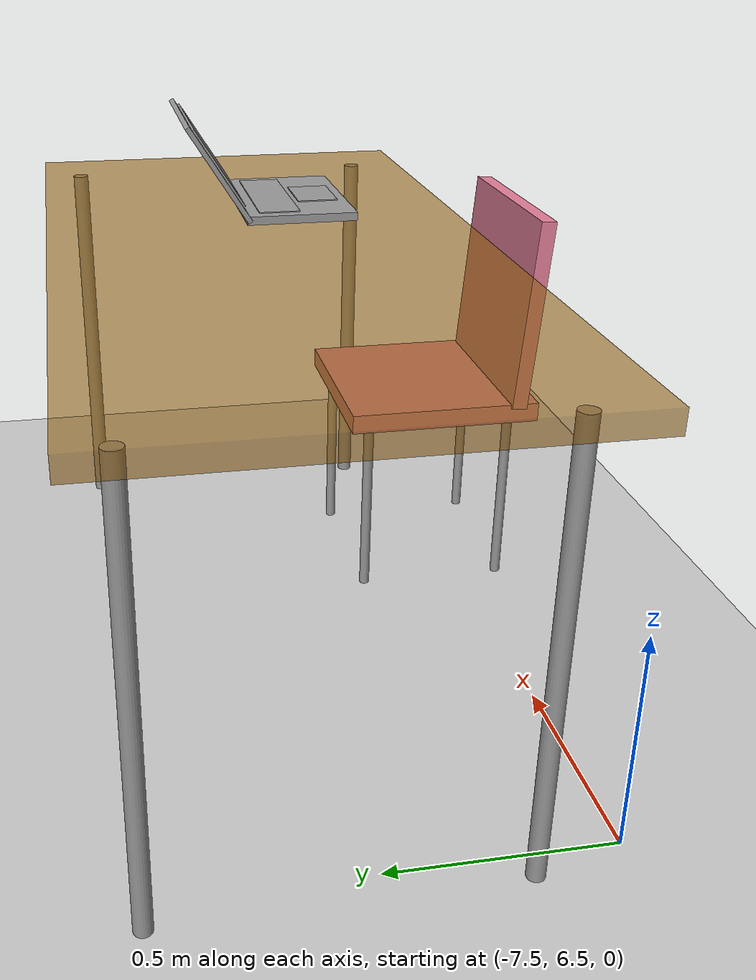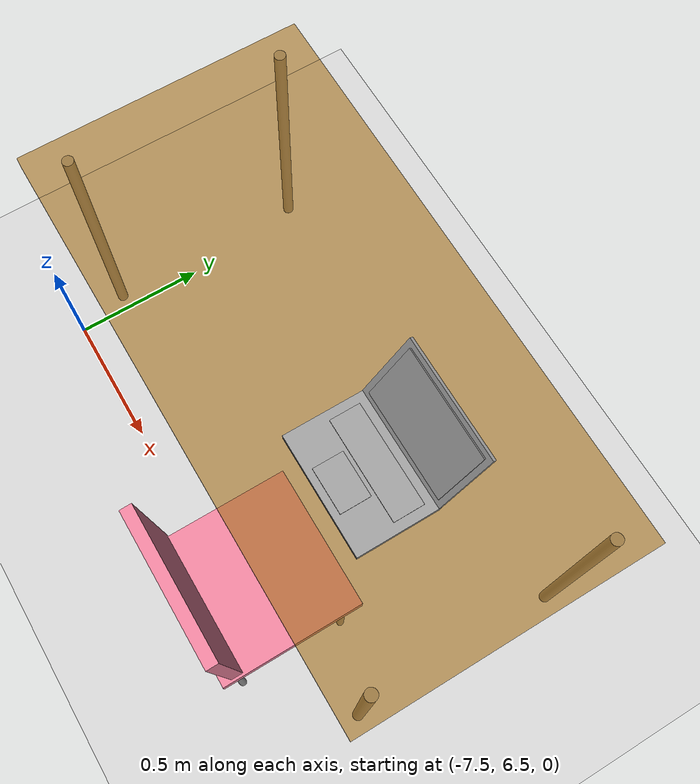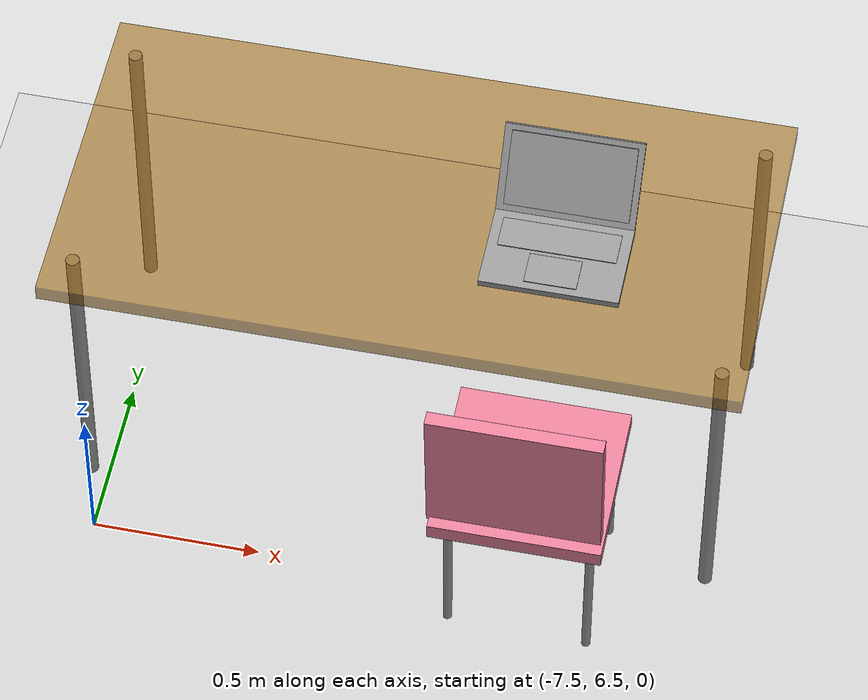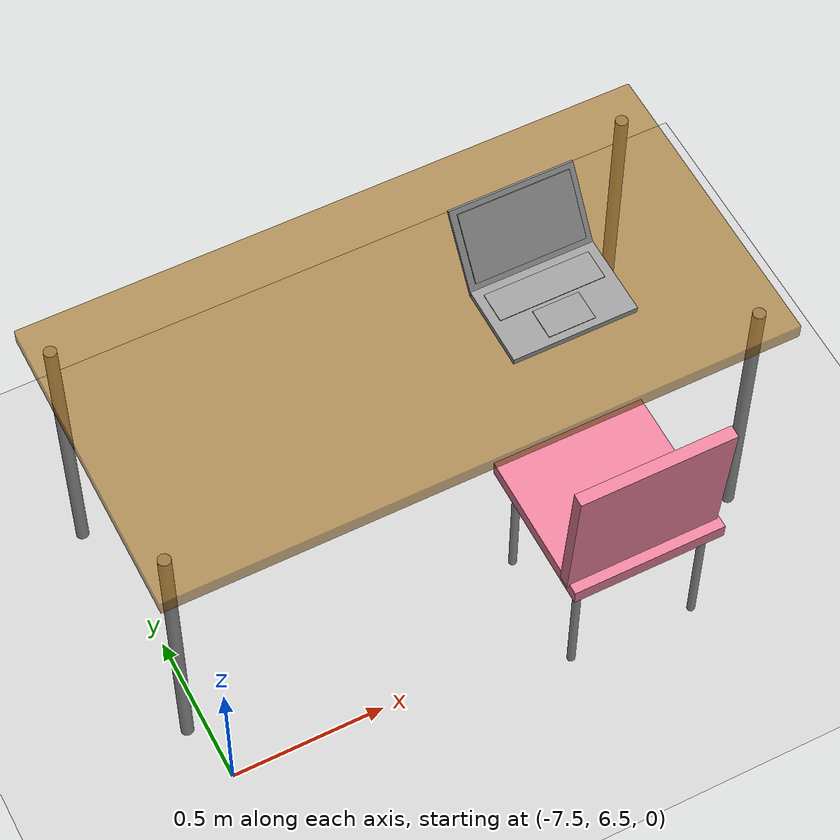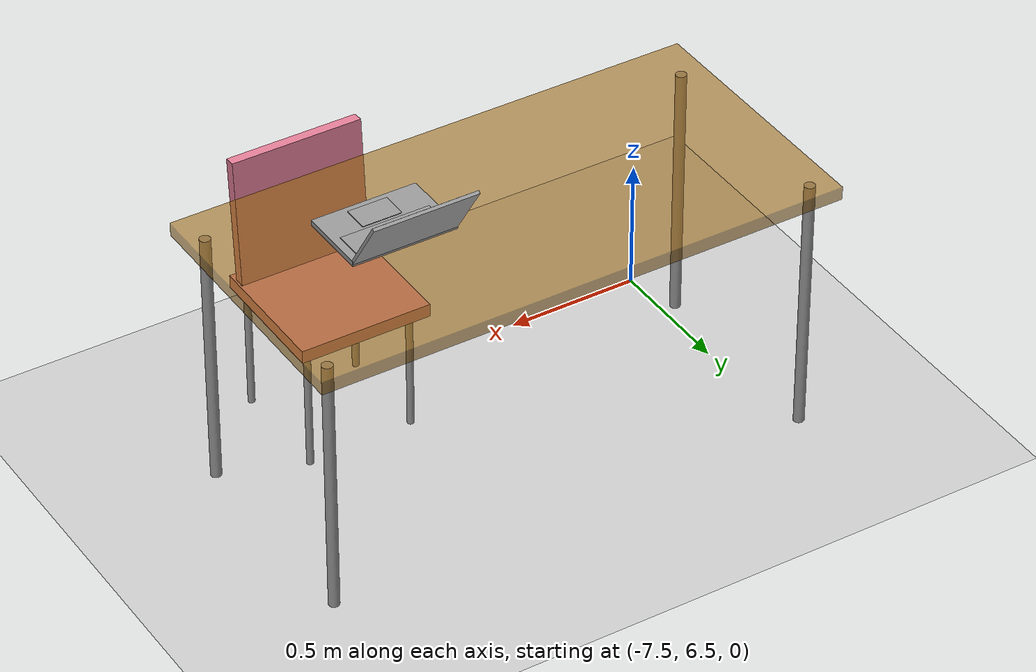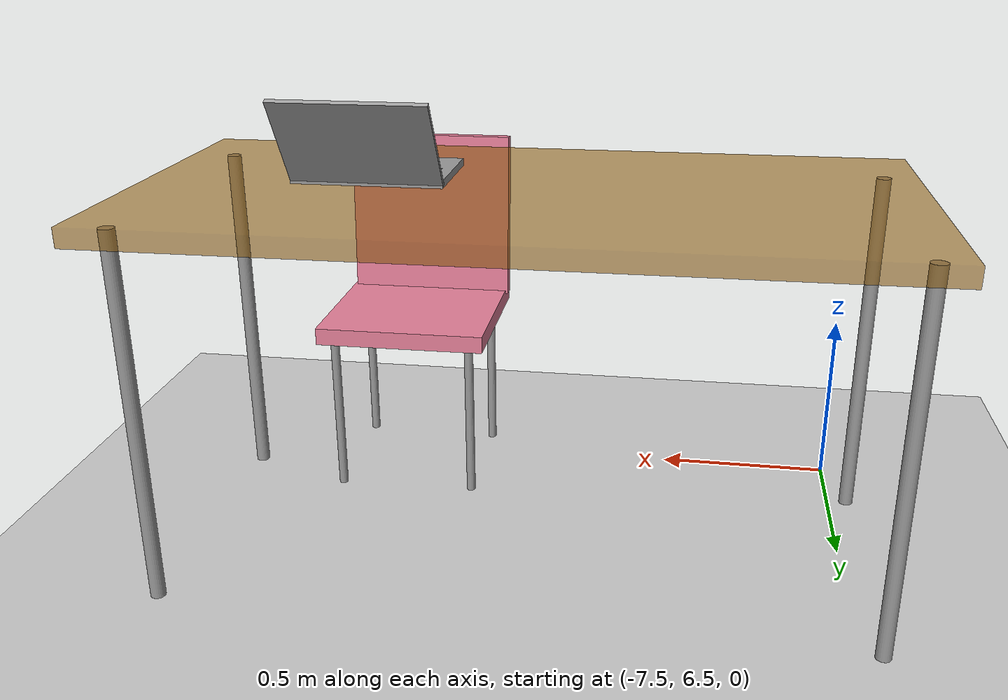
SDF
<sdf version="1.7">
 <world name="default">
  <model name="ground_plane">
   <static>1</static>
   <link name="link">
    <collision name="collision">
     <geometry><plane><normal>0 0 1</normal><size>100 100</size></plane></geometry>
     <surface>
      <contact><collide_bitmask>65535</collide_bitmask></contact>
      <friction><ode><mu>100</mu><mu2>50</mu2></ode></friction>
     </surface>
    </collision>
    <visual name="visual">
     <cast_shadows>0</cast_shadows>
     <geometry><plane><normal>0 0 1</normal><size>100 100</size></plane></geometry>
     <material>
      <script><uri>file://media/materials/scripts/gazebo.material</uri><name>Gazebo/Grey</name></script>
     </material>
    </visual>
   </link>
  </model>
  <model name="my_table_v2">
   <link name="link">
    <inertial>
     <mass>1</mass>
     <inertia>
      <ixx>0.166667</ixx>
      <ixy>0</ixy>
      <ixz>0</ixz>
      <iyy>0.166667</iyy>
      <iyz>0</iyz>
      <izz>0.166667</izz>
     </inertia>
    </inertial>
    <visual name="visual">
     <geometry><box><size>2 1 0.05</size></box></geometry>
     <material>
      <script><name>Gazebo/Grey</name><uri>file://media/materials/scripts/gazebo.material</uri></script>
      <shader type="pixel"><normal_map>__default__</normal_map></shader>
      <ambient>0.6 0.39 0.055 0.6</ambient>
      <diffuse>0.65 0.65 0.65 1</diffuse>
      <specular>0.01 0.01 0.01 1</specular>
      <emissive>0.1 0.1 0.1 1</emissive>
     </material>
     <pose>0 0 1 0 -0 0</pose>
    </visual>
    <collision name="collision">
     <pose>0 0 1 0 -0 0</pose>
     <geometry><box><size>2 1 0.05</size></box></geometry>
     <surface>
      <friction>
       <ode><mu>1</mu><mu2>1</mu2><fdir1>0 0 0</fdir1><slip1>0</slip1><slip2>0</slip2></ode>
       <torsional>
        <coefficient>1</coefficient>
        <patch_radius>0</patch_radius>
        <surface_radius>0</surface_radius>
        <use_patch_radius>1</use_patch_radius>
        <ode><slip>0</slip></ode>
       </torsional>
      </friction>
      <bounce><restitution_coefficient>0</restitution_coefficient><threshold>1e+06</threshold></bounce>
      <contact>
       <collide_without_contact>0</collide_without_contact>
       <collide_without_contact_bitmask>1</collide_without_contact_bitmask>
       <collide_bitmask>1</collide_bitmask>
       <ode>
        <soft_cfm>0</soft_cfm>
        <soft_erp>0.2</soft_erp>
        <kp>1e+13</kp>
        <kd>1</kd>
        <max_vel>0.01</max_vel>
        <min_depth>0</min_depth>
       </ode>
       <bullet>
        <split_impulse>1</split_impulse>
        <split_impulse_penetration_threshold>-0.01</split_impulse_penetration_threshold>
        <soft_cfm>0</soft_cfm>
        <soft_erp>0.2</soft_erp>
        <kp>1e+13</kp>
        <kd>1</kd>
       </bullet>
      </contact>
     </surface>
    </collision>
   </link>
   <link name="link_1">
    <inertial>
     <mass>1</mass>
     <inertia><ixx>0.145833</ixx><ixy>0</ixy><ixz>0</ixz><iyy>0.145833</iyy><iyz>0</iyz><izz>0.125</izz></inertia>
    </inertial>
    <pose>0.928374 -0.393621 0.5 0 -0 0</pose>
    <visual name="visual">
     <geometry><cylinder><radius>0.02</radius><length>1</length></cylinder></geometry>
     <material>
      <lighting>1</lighting>
      <script><uri>file://media/materials/scripts/gazebo.material</uri><name>Gazebo/Grey</name></script>
      <shader type="pixel"><normal_map>__default__</normal_map></shader>
      <ambient>0.5 0.5 0.5 1</ambient>
      <diffuse>0.8 0.8 0.8 1</diffuse>
      <specular>0.01 0.01 0.01 1</specular>
      <emissive>0 0 0 1</emissive>
     </material>
    </visual>
    <collision name="collision">
     <geometry><cylinder><radius>0.02</radius><length>0.75</length></cylinder></geometry>
     <surface>
      <friction>
       <ode><mu>1</mu><mu2>1</mu2><fdir1>0 0 0</fdir1><slip1>0</slip1><slip2>0</slip2></ode>
       <torsional>
        <coefficient>1</coefficient>
        <patch_radius>0</patch_radius>
        <surface_radius>0</surface_radius>
        <use_patch_radius>1</use_patch_radius>
        <ode><slip>0</slip></ode>
       </torsional>
      </friction>
      <bounce><restitution_coefficient>0</restitution_coefficient><threshold>1e+06</threshold></bounce>
      <contact>
       <collide_without_contact>0</collide_without_contact>
       <collide_without_contact_bitmask>1</collide_without_contact_bitmask>
       <collide_bitmask>1</collide_bitmask>
       <ode>
        <soft_cfm>0</soft_cfm>
        <soft_erp>0.2</soft_erp>
        <kp>1e+13</kp>
        <kd>1</kd>
        <max_vel>0.01</max_vel>
        <min_depth>0</min_depth>
       </ode>
       <bullet>
        <split_impulse>1</split_impulse>
        <split_impulse_penetration_threshold>-0.01</split_impulse_penetration_threshold>
        <soft_cfm>0</soft_cfm>
        <soft_erp>0.2</soft_erp>
        <kp>1e+13</kp>
        <kd>1</kd>
       </bullet>
      </contact>
     </surface>
    </collision>
   </link>
   <link name="link_1_clone_1">
    <inertial>
     <mass>1</mass>
     <inertia><ixx>0.145833</ixx><ixy>0</ixy><ixz>0</ixz><iyy>0.145833</iyy><iyz>0</iyz><izz>0.125</izz></inertia>
    </inertial>
    <pose>-0.927679 -0.365385 0.5 0 -0 0</pose>
    <visual name="visual">
     <geometry><cylinder><radius>0.02</radius><length>1</length></cylinder></geometry>
     <material>
      <lighting>1</lighting>
      <script><uri>file://media/materials/scripts/gazebo.material</uri><name>Gazebo/Grey</name></script>
      <shader type="pixel"><normal_map>__default__</normal_map></shader>
      <ambient>0.5 0.5 0.5 1</ambient>
      <diffuse>0.8 0.8 0.8 1</diffuse>
      <specular>0.01 0.01 0.01 1</specular>
      <emissive>0 0 0 1</emissive>
     </material>
    </visual>
    <collision name="collision">
     <geometry><cylinder><radius>0.02</radius><length>0.75</length></cylinder></geometry>
     <surface>
      <friction>
       <ode><mu>1</mu><mu2>1</mu2><fdir1>0 0 0</fdir1><slip1>0</slip1><slip2>0</slip2></ode>
       <torsional>
        <coefficient>1</coefficient>
        <patch_radius>0</patch_radius>
        <surface_radius>0</surface_radius>
        <use_patch_radius>1</use_patch_radius>
        <ode><slip>0</slip></ode>
       </torsional>
      </friction>
      <bounce><restitution_coefficient>0</restitution_coefficient><threshold>1e+06</threshold></bounce>
      <contact>
       <collide_without_contact>0</collide_without_contact>
       <collide_without_contact_bitmask>1</collide_without_contact_bitmask>
       <collide_bitmask>1</collide_bitmask>
       <ode>
        <soft_cfm>0</soft_cfm>
        <soft_erp>0.2</soft_erp>
        <kp>1e+13</kp>
        <kd>1</kd>
        <max_vel>0.01</max_vel>
        <min_depth>0</min_depth>
       </ode>
       <bullet>
        <split_impulse>1</split_impulse>
        <split_impulse_penetration_threshold>-0.01</split_impulse_penetration_threshold>
        <soft_cfm>0</soft_cfm>
        <soft_erp>0.2</soft_erp>
        <kp>1e+13</kp>
        <kd>1</kd>
       </bullet>
      </contact>
     </surface>
    </collision>
   </link>
   <link name="link_1_clone_1_clone">
    <inertial>
     <mass>1</mass>
     <inertia><ixx>0.145833</ixx><ixy>0</ixy><ixz>0</ixz><iyy>0.145833</iyy><iyz>0</iyz><izz>0.125</izz></inertia>
    </inertial>
    <pose>-0.933002 0.405987 0.5 0 -0 0</pose>
    <visual name="visual">
     <geometry><cylinder><radius>0.02</radius><length>1</length></cylinder></geometry>
     <material>
      <lighting>1</lighting>
      <script><uri>file://media/materials/scripts/gazebo.material</uri><name>Gazebo/Grey</name></script>
      <shader type="pixel"><normal_map>__default__</normal_map></shader>
      <ambient>0.5 0.5 0.5 1</ambient>
      <diffuse>0.8 0.8 0.8 1</diffuse>
      <specular>0.01 0.01 0.01 1</specular>
      <emissive>0 0 0 1</emissive>
     </material>
    </visual>
    <collision name="collision">
     <geometry><cylinder><radius>0.02</radius><length>0.75</length></cylinder></geometry>
     <surface>
      <friction>
       <ode><mu>1</mu><mu2>1</mu2><fdir1>0 0 0</fdir1><slip1>0</slip1><slip2>0</slip2></ode>
       <torsional>
        <coefficient>1</coefficient>
        <patch_radius>0</patch_radius>
        <surface_radius>0</surface_radius>
        <use_patch_radius>1</use_patch_radius>
        <ode><slip>0</slip></ode>
       </torsional>
      </friction>
      <bounce><restitution_coefficient>0</restitution_coefficient><threshold>1e+06</threshold></bounce>
      <contact>
       <collide_without_contact>0</collide_without_contact>
       <collide_without_contact_bitmask>1</collide_without_contact_bitmask>
       <collide_bitmask>1</collide_bitmask>
       <ode>
        <soft_cfm>0</soft_cfm>
        <soft_erp>0.2</soft_erp>
        <kp>1e+13</kp>
        <kd>1</kd>
        <max_vel>0.01</max_vel>
        <min_depth>0</min_depth>
       </ode>
       <bullet>
        <split_impulse>1</split_impulse>
        <split_impulse_penetration_threshold>-0.01</split_impulse_penetration_threshold>
        <soft_cfm>0</soft_cfm>
        <soft_erp>0.2</soft_erp>
        <kp>1e+13</kp>
        <kd>1</kd>
       </bullet>
      </contact>
     </surface>
    </collision>
   </link>
   <link name="link_1_clone_1_clone_0">
    <inertial>
     <mass>1</mass>
     <inertia><ixx>0.145833</ixx><ixy>0</ixy><ixz>0</ixz><iyy>0.145833</iyy><iyz>0</iyz><izz>0.125</izz></inertia>
    </inertial>
    <pose>0.924345 0.40229 0.5 0 -0 0</pose>
    <visual name="visual">
     <geometry><cylinder><radius>0.02</radius><length>1</length></cylinder></geometry>
     <material>
      <lighting>1</lighting>
      <script><uri>file://media/materials/scripts/gazebo.material</uri><name>Gazebo/Grey</name></script>
      <shader type="pixel"><normal_map>__default__</normal_map></shader>
      <ambient>0.5 0.5 0.5 1</ambient>
      <diffuse>0.8 0.8 0.8 1</diffuse>
      <specular>0.01 0.01 0.01 1</specular>
      <emissive>0 0 0 1</emissive>
     </material>
    </visual>
    <collision name="collision">
     <geometry><cylinder><radius>0.02</radius><length>0.75</length></cylinder></geometry>
     <surface>
      <friction>
       <ode><mu>1</mu><mu2>1</mu2><fdir1>0 0 0</fdir1><slip1>0</slip1><slip2>0</slip2></ode>
       <torsional>
        <coefficient>1</coefficient>
        <patch_radius>0</patch_radius>
        <surface_radius>0</surface_radius>
        <use_patch_radius>1</use_patch_radius>
        <ode><slip>0</slip></ode>
       </torsional>
      </friction>
      <bounce><restitution_coefficient>0</restitution_coefficient><threshold>1e+06</threshold></bounce>
      <contact>
       <collide_without_contact>0</collide_without_contact>
       <collide_without_contact_bitmask>1</collide_without_contact_bitmask>
       <collide_bitmask>1</collide_bitmask>
       <ode>
        <soft_cfm>0</soft_cfm>
        <soft_erp>0.2</soft_erp>
        <kp>1e+13</kp>
        <kd>1</kd>
        <max_vel>0.01</max_vel>
        <min_depth>0</min_depth>
       </ode>
       <bullet>
        <split_impulse>1</split_impulse>
        <split_impulse_penetration_threshold>-0.01</split_impulse_penetration_threshold>
        <soft_cfm>0</soft_cfm>
        <soft_erp>0.2</soft_erp>
        <kp>1e+13</kp>
        <kd>1</kd>
       </bullet>
      </contact>
     </surface>
    </collision>
   </link>
   <static>1</static>
   <pose>-6.62773 7.06722 0 0 -0 0</pose>
  </model>
  <model name="my_chair_2">
   <link name="link">
    <inertial>
     <mass>1</mass>
     <inertia>
      <ixx>0.166667</ixx>
      <ixy>0</ixy>
      <ixz>0</ixz>
      <iyy>0.166667</iyy>
      <iyz>0</iyz>
      <izz>0.166667</izz>
     </inertia>
    </inertial>
    <gravity>0</gravity>
    <visual name="visual">
     <geometry><box><size>0.5 0.5 0.05</size></box></geometry>
     <material>
      <script><name>Gazebo/Grey</name><uri>file://media/materials/scripts/gazebo.material</uri></script>
      <shader type="pixel"><normal_map>__default__</normal_map></shader>
      <ambient>0.9 0.5 0.6 1</ambient>
      <diffuse>0.9 0.5 0.6 1</diffuse>
      <specular>0.01 0.01 0.01 1</specular>
      <emissive>0 0 0 1</emissive>
     </material>
     <pose>0 0 0.5 0 -0 0</pose>
    </visual>
    <collision name="collision">
     <pose>0 0 0.5 0 -0 0</pose>
     <geometry><box><size>0.5 0.5 0.05</size></box></geometry>
     <surface>
      <friction>
       <ode><mu>1</mu><mu2>1</mu2><fdir1>0 0 0</fdir1><slip1>0</slip1><slip2>0</slip2></ode>
       <torsional>
        <coefficient>1</coefficient>
        <patch_radius>0</patch_radius>
        <surface_radius>0</surface_radius>
        <use_patch_radius>1</use_patch_radius>
        <ode><slip>0</slip></ode>
       </torsional>
      </friction>
      <bounce><restitution_coefficient>0</restitution_coefficient><threshold>1e+06</threshold></bounce>
      <contact>
       <collide_without_contact>0</collide_without_contact>
       <collide_without_contact_bitmask>1</collide_without_contact_bitmask>
       <collide_bitmask>1</collide_bitmask>
       <ode>
        <soft_cfm>0</soft_cfm>
        <soft_erp>0.2</soft_erp>
        <kp>1e+13</kp>
        <kd>1</kd>
        <max_vel>0.01</max_vel>
        <min_depth>0</min_depth>
       </ode>
       <bullet>
        <split_impulse>1</split_impulse>
        <split_impulse_penetration_threshold>-0.01</split_impulse_penetration_threshold>
        <soft_cfm>0</soft_cfm>
        <soft_erp>0.2</soft_erp>
        <kp>1e+13</kp>
        <kd>1</kd>
       </bullet>
      </contact>
     </surface>
    </collision>
   </link>
   <link name="link_0">
    <inertial>
     <mass>1</mass>
     <inertia><ixx>0.145833</ixx><ixy>0</ixy><ixz>0</ixz><iyy>0.145833</iyy><iyz>0</iyz><izz>0.125</izz></inertia>
    </inertial>
    <pose>-0.200315 -0.184767 -0.272701 -0 -0 -0</pose>
    <gravity>0</gravity>
    <visual name="visual">
     <pose>0 0 0.5 0 -0 0</pose>
     <geometry><cylinder><radius>0.013</radius><length>0.5</length></cylinder></geometry>
     <material>
      <lighting>1</lighting>
      <script><uri>file://media/materials/scripts/gazebo.material</uri><name>Gazebo/Grey</name></script>
      <shader type="pixel"><normal_map>__default__</normal_map></shader>
      <ambient>0.3 0.3 0.3 1</ambient>
      <diffuse>0.7 0.7 0.7 1</diffuse>
      <specular>0.01 0.01 0.01 1</specular>
      <emissive>0 0 0 1</emissive>
     </material>
    </visual>
    <collision name="collision">
     <pose>0 0 0.5 0 -0 0</pose>
     <geometry><cylinder><radius>0.013</radius><length>0.5</length></cylinder></geometry>
     <surface>
      <friction>
       <ode><mu>1</mu><mu2>1</mu2><fdir1>0 0 0</fdir1><slip1>0</slip1><slip2>0</slip2></ode>
       <torsional>
        <coefficient>1</coefficient>
        <patch_radius>0</patch_radius>
        <surface_radius>0</surface_radius>
        <use_patch_radius>1</use_patch_radius>
        <ode><slip>0</slip></ode>
       </torsional>
      </friction>
      <bounce><restitution_coefficient>0</restitution_coefficient><threshold>1e+06</threshold></bounce>
      <contact>
       <collide_without_contact>0</collide_without_contact>
       <collide_without_contact_bitmask>1</collide_without_contact_bitmask>
       <collide_bitmask>1</collide_bitmask>
       <ode>
        <soft_cfm>0</soft_cfm>
        <soft_erp>0.2</soft_erp>
        <kp>1e+13</kp>
        <kd>1</kd>
        <max_vel>0.01</max_vel>
        <min_depth>0</min_depth>
       </ode>
       <bullet>
        <split_impulse>1</split_impulse>
        <split_impulse_penetration_threshold>-0.01</split_impulse_penetration_threshold>
        <soft_cfm>0</soft_cfm>
        <soft_erp>0.2</soft_erp>
        <kp>1e+13</kp>
        <kd>1</kd>
       </bullet>
      </contact>
     </surface>
    </collision>
   </link>
   <link name="link_0_clone">
    <inertial>
     <mass>1</mass>
     <inertia><ixx>0.145833</ixx><ixy>0</ixy><ixz>0</ixz><iyy>0.145833</iyy><iyz>0</iyz><izz>0.125</izz></inertia>
    </inertial>
    <pose>-0.198839 0.194466 -0.272701 -0 -0 -0</pose>
    <gravity>0</gravity>
    <visual name="visual">
     <pose>0 0 0.5 0 -0 0</pose>
     <geometry><cylinder><radius>0.013</radius><length>0.5</length></cylinder></geometry>
     <material>
      <lighting>1</lighting>
      <script><uri>file://media/materials/scripts/gazebo.material</uri><name>Gazebo/Grey</name></script>
      <shader type="pixel"><normal_map>__default__</normal_map></shader>
      <ambient>0.3 0.3 0.3 1</ambient>
      <diffuse>0.7 0.7 0.7 1</diffuse>
      <specular>0.01 0.01 0.01 1</specular>
      <emissive>0 0 0 1</emissive>
     </material>
    </visual>
    <collision name="collision">
     <pose>0 0 0.5 0 -0 0</pose>
     <geometry><cylinder><radius>0.013</radius><length>0.5</length></cylinder></geometry>
     <surface>
      <friction>
       <ode><mu>1</mu><mu2>1</mu2><fdir1>0 0 0</fdir1><slip1>0</slip1><slip2>0</slip2></ode>
       <torsional>
        <coefficient>1</coefficient>
        <patch_radius>0</patch_radius>
        <surface_radius>0</surface_radius>
        <use_patch_radius>1</use_patch_radius>
        <ode><slip>0</slip></ode>
       </torsional>
      </friction>
      <bounce><restitution_coefficient>0</restitution_coefficient><threshold>1e+06</threshold></bounce>
      <contact>
       <collide_without_contact>0</collide_without_contact>
       <collide_without_contact_bitmask>1</collide_without_contact_bitmask>
       <collide_bitmask>1</collide_bitmask>
       <ode>
        <soft_cfm>0</soft_cfm>
        <soft_erp>0.2</soft_erp>
        <kp>1e+13</kp>
        <kd>1</kd>
        <max_vel>0.01</max_vel>
        <min_depth>0</min_depth>
       </ode>
       <bullet>
        <split_impulse>1</split_impulse>
        <split_impulse_penetration_threshold>-0.01</split_impulse_penetration_threshold>
        <soft_cfm>0</soft_cfm>
        <soft_erp>0.2</soft_erp>
        <kp>1e+13</kp>
        <kd>1</kd>
       </bullet>
      </contact>
     </surface>
    </collision>
   </link>
   <link name="link_0_clone_0">
    <inertial>
     <mass>1</mass>
     <inertia><ixx>0.145833</ixx><ixy>0</ixy><ixz>0</ixz><iyy>0.145833</iyy><iyz>0</iyz><izz>0.125</izz></inertia>
    </inertial>
    <pose>0.211914 -0.198881 -0.272701 -0 -0 -0</pose>
    <gravity>0</gravity>
    <visual name="visual">
     <pose>0 0 0.5 0 -0 0</pose>
     <geometry><cylinder><radius>0.013</radius><length>0.5</length></cylinder></geometry>
     <material>
      <lighting>1</lighting>
      <script><uri>file://media/materials/scripts/gazebo.material</uri><name>Gazebo/Grey</name></script>
      <shader type="pixel"><normal_map>__default__</normal_map></shader>
      <ambient>0.3 0.3 0.3 1</ambient>
      <diffuse>0.7 0.7 0.7 1</diffuse>
      <specular>0.01 0.01 0.01 1</specular>
      <emissive>0 0 0 1</emissive>
     </material>
    </visual>
    <collision name="collision">
     <pose>0 0 0.5 0 -0 0</pose>
     <geometry><cylinder><radius>0.013</radius><length>0.5</length></cylinder></geometry>
     <surface>
      <friction>
       <ode><mu>1</mu><mu2>1</mu2><fdir1>0 0 0</fdir1><slip1>0</slip1><slip2>0</slip2></ode>
       <torsional>
        <coefficient>1</coefficient>
        <patch_radius>0</patch_radius>
        <surface_radius>0</surface_radius>
        <use_patch_radius>1</use_patch_radius>
        <ode><slip>0</slip></ode>
       </torsional>
      </friction>
      <bounce><restitution_coefficient>0</restitution_coefficient><threshold>1e+06</threshold></bounce>
      <contact>
       <collide_without_contact>0</collide_without_contact>
       <collide_without_contact_bitmask>1</collide_without_contact_bitmask>
       <collide_bitmask>1</collide_bitmask>
       <ode>
        <soft_cfm>0</soft_cfm>
        <soft_erp>0.2</soft_erp>
        <kp>1e+13</kp>
        <kd>1</kd>
        <max_vel>0.01</max_vel>
        <min_depth>0</min_depth>
       </ode>
       <bullet>
        <split_impulse>1</split_impulse>
        <split_impulse_penetration_threshold>-0.01</split_impulse_penetration_threshold>
        <soft_cfm>0</soft_cfm>
        <soft_erp>0.2</soft_erp>
        <kp>1e+13</kp>
        <kd>1</kd>
       </bullet>
      </contact>
     </surface>
    </collision>
   </link>
   <link name="link_0_clone_1">
    <inertial>
     <mass>1</mass>
     <inertia><ixx>0.145833</ixx><ixy>0</ixy><ixz>0</ixz><iyy>0.145833</iyy><iyz>0</iyz><izz>0.125</izz></inertia>
    </inertial>
    <pose>0.207422 0.203987 -0.272701 -0 -0 -0</pose>
    <gravity>0</gravity>
    <visual name="visual">
     <pose>0 0 0.5 0 -0 0</pose>
     <geometry><cylinder><radius>0.013</radius><length>0.5</length></cylinder></geometry>
     <material>
      <lighting>1</lighting>
      <script><uri>file://media/materials/scripts/gazebo.material</uri><name>Gazebo/Grey</name></script>
      <shader type="pixel"><normal_map>__default__</normal_map></shader>
      <ambient>0.3 0.3 0.3 1</ambient>
      <diffuse>0.7 0.7 0.7 1</diffuse>
      <specular>0.01 0.01 0.01 1</specular>
      <emissive>0 0 0 1</emissive>
     </material>
    </visual>
    <collision name="collision">
     <pose>0 0 0.5 0 -0 0</pose>
     <geometry><cylinder><radius>0.013</radius><length>0.5</length></cylinder></geometry>
     <surface>
      <friction>
       <ode><mu>1</mu><mu2>1</mu2><fdir1>0 0 0</fdir1><slip1>0</slip1><slip2>0</slip2></ode>
       <torsional>
        <coefficient>1</coefficient>
        <patch_radius>0</patch_radius>
        <surface_radius>0</surface_radius>
        <use_patch_radius>1</use_patch_radius>
        <ode><slip>0</slip></ode>
       </torsional>
      </friction>
      <bounce><restitution_coefficient>0</restitution_coefficient><threshold>1e+06</threshold></bounce>
      <contact>
       <collide_without_contact>0</collide_without_contact>
       <collide_without_contact_bitmask>1</collide_without_contact_bitmask>
       <collide_bitmask>1</collide_bitmask>
       <ode>
        <soft_cfm>0</soft_cfm>
        <soft_erp>0.2</soft_erp>
        <kp>1e+13</kp>
        <kd>1</kd>
        <max_vel>0.01</max_vel>
        <min_depth>0</min_depth>
       </ode>
       <bullet>
        <split_impulse>1</split_impulse>
        <split_impulse_penetration_threshold>-0.01</split_impulse_penetration_threshold>
        <soft_cfm>0</soft_cfm>
        <soft_erp>0.2</soft_erp>
        <kp>1e+13</kp>
        <kd>1</kd>
       </bullet>
      </contact>
     </surface>
    </collision>
   </link>
   <link name="link_clone">
    <inertial>
     <mass>1</mass>
     <inertia>
      <ixx>0.166667</ixx>
      <ixy>0</ixy>
      <ixz>0</ixz>
      <iyy>0.166667</iyy>
      <iyz>0</iyz>
      <izz>0.166667</izz>
     </inertia>
    </inertial>
    <pose>-0.00806 -0.212496 0.264135 -0 -0 -0</pose>
    <gravity>0</gravity>
    <visual name="visual">
     <geometry><box><size>0.5 0.5 0.04</size></box></geometry>
     <material>
      <script><name>Gazebo/Grey</name><uri>file://media/materials/scripts/gazebo.material</uri></script>
      <shader type="pixel"><normal_map>__default__</normal_map></shader>
      <ambient>0.9 0.5 0.6 1</ambient>
      <diffuse>0.9 0.5 0.6 1</diffuse>
      <specular>0.01 0.01 0.01 1</specular>
      <emissive>0 0 0 1</emissive>
     </material>
     <pose>0 0 0.5 -1.5 0 0</pose>
    </visual>
    <collision name="collision">
     <pose>0 0 0.5 -1.5 0 0</pose>
     <geometry><box><size>0.5 0.5 0.04</size></box></geometry>
     <surface>
      <friction>
       <ode><mu>1</mu><mu2>1</mu2><fdir1>0 0 0</fdir1><slip1>0</slip1><slip2>0</slip2></ode>
       <torsional>
        <coefficient>1</coefficient>
        <patch_radius>0</patch_radius>
        <surface_radius>0</surface_radius>
        <use_patch_radius>1</use_patch_radius>
        <ode><slip>0</slip></ode>
       </torsional>
      </friction>
      <bounce><restitution_coefficient>0</restitution_coefficient><threshold>1e+06</threshold></bounce>
      <contact>
       <collide_without_contact>0</collide_without_contact>
       <collide_without_contact_bitmask>1</collide_without_contact_bitmask>
       <collide_bitmask>1</collide_bitmask>
       <ode>
        <soft_cfm>0</soft_cfm>
        <soft_erp>0.2</soft_erp>
        <kp>1e+13</kp>
        <kd>1</kd>
        <max_vel>0.01</max_vel>
        <min_depth>0</min_depth>
       </ode>
       <bullet>
        <split_impulse>1</split_impulse>
        <split_impulse_penetration_threshold>-0.01</split_impulse_penetration_threshold>
        <soft_cfm>0</soft_cfm>
        <soft_erp>0.2</soft_erp>
        <kp>1e+13</kp>
        <kd>1</kd>
       </bullet>
      </contact>
     </surface>
    </collision>
   </link>
   <static>1</static>
   <pose>-6.21277 6.58108 0 0 -0 0</pose>
  </model>
  <model name="my_pc">
   <link name="link">
    <inertial>
     <mass>1</mass>
     <inertia>
      <ixx>0.166667</ixx>
      <ixy>0</ixy>
      <ixz>0</ixz>
      <iyy>0.166667</iyy>
      <iyz>0</iyz>
      <izz>0.166667</izz>
     </inertia>
    </inertial>
    <gravity>0</gravity>
    <visual name="visual">
     <geometry><box><size>0.4 0.27 0.02</size></box></geometry>
     <material>
      <script><name>Gazebo/Grey</name><uri>file://media/materials/scripts/gazebo.material</uri></script>
      <shader type="pixel"><normal_map>__default__</normal_map></shader>
      <ambient>0.6 0.6 0.6 0</ambient>
      <diffuse>0.6 0.6 0.6 1</diffuse>
      <specular>0.01 0.01 0.01 1</specular>
      <emissive>0 0 0 1</emissive>
     </material>
     <pose>0 0 1.035 0 -0 0</pose>
    </visual>
    <collision name="collision">
     <pose>0 0 1.035 0 -0 0</pose>
     <geometry><box><size>0.4 0.27 0.02</size></box></geometry>
     <surface>
      <friction>
       <ode><mu>1</mu><mu2>1</mu2><fdir1>0 0 0</fdir1><slip1>0</slip1><slip2>0</slip2></ode>
       <torsional>
        <coefficient>1</coefficient>
        <patch_radius>0</patch_radius>
        <surface_radius>0</surface_radius>
        <use_patch_radius>1</use_patch_radius>
        <ode><slip>0</slip></ode>
       </torsional>
      </friction>
      <bounce><restitution_coefficient>0</restitution_coefficient><threshold>1e+06</threshold></bounce>
      <contact>
       <collide_without_contact>0</collide_without_contact>
       <collide_without_contact_bitmask>1</collide_without_contact_bitmask>
       <collide_bitmask>1</collide_bitmask>
       <ode>
        <soft_cfm>0</soft_cfm>
        <soft_erp>0.2</soft_erp>
        <kp>1e+13</kp>
        <kd>1</kd>
        <max_vel>0.01</max_vel>
        <min_depth>0</min_depth>
       </ode>
       <bullet>
        <split_impulse>1</split_impulse>
        <split_impulse_penetration_threshold>-0.01</split_impulse_penetration_threshold>
        <soft_cfm>0</soft_cfm>
        <soft_erp>0.2</soft_erp>
        <kp>1e+13</kp>
        <kd>1</kd>
       </bullet>
      </contact>
     </surface>
    </collision>
   </link>
   <link name="link_clone">
    <inertial>
     <mass>1</mass>
     <inertia>
      <ixx>0.166667</ixx>
      <ixy>0</ixy>
      <ixz>0</ixz>
      <iyy>0.166667</iyy>
      <iyz>0</iyz>
      <izz>0.166667</izz>
     </inertia>
    </inertial>
    <pose>-0.00057 0.199611 0.109573 0 -0 0</pose>
    <visual name="visual">
     <geometry><box><size>0.4 0.27 0.012</size></box></geometry>
     <material>
      <script><name>Gazebo/Grey</name><uri>file://media/materials/scripts/gazebo.material</uri></script>
      <shader type="pixel"><normal_map>__default__</normal_map></shader>
      <ambient>0.6 0.6 0.6 0</ambient>
      <diffuse>0.6 0.6 0.6 1</diffuse>
      <specular>0.01 0.01 0.01 1</specular>
      <emissive>0 0 0 1</emissive>
     </material>
     <pose>0 0 1.035 1 -0 0</pose>
    </visual>
    <collision name="collision">
     <pose>0 0 1.035 1 -0 0</pose>
     <geometry><box><size>0.4 0.27 0.012</size></box></geometry>
     <surface>
      <friction>
       <ode><mu>1</mu><mu2>1</mu2><fdir1>0 0 0</fdir1><slip1>0</slip1><slip2>0</slip2></ode>
       <torsional>
        <coefficient>1</coefficient>
        <patch_radius>0</patch_radius>
        <surface_radius>0</surface_radius>
        <use_patch_radius>1</use_patch_radius>
        <ode><slip>0</slip></ode>
       </torsional>
      </friction>
      <bounce><restitution_coefficient>0</restitution_coefficient><threshold>1e+06</threshold></bounce>
      <contact>
       <collide_without_contact>0</collide_without_contact>
       <collide_without_contact_bitmask>1</collide_without_contact_bitmask>
       <collide_bitmask>1</collide_bitmask>
       <ode>
        <soft_cfm>0</soft_cfm>
        <soft_erp>0.2</soft_erp>
        <kp>1e+13</kp>
        <kd>1</kd>
        <max_vel>0.01</max_vel>
        <min_depth>0</min_depth>
       </ode>
       <bullet>
        <split_impulse>1</split_impulse>
        <split_impulse_penetration_threshold>-0.01</split_impulse_penetration_threshold>
        <soft_cfm>0</soft_cfm>
        <soft_erp>0.2</soft_erp>
        <kp>1e+13</kp>
        <kd>1</kd>
       </bullet>
      </contact>
     </surface>
    </collision>
   </link>
   <link name="link_clone_0">
    <inertial>
     <mass>1</mass>
     <inertia>
      <ixx>0.166667</ixx>
      <ixy>0</ixy>
      <ixz>0</ixz>
      <iyy>0.166667</iyy>
      <iyz>0</iyz>
      <izz>0.166667</izz>
     </inertia>
    </inertial>
    <pose>0.000615 -0.061904 0.007701 0 -0 0</pose>
    <visual name="visual">
     <geometry><box><size>0.15 0.1 0.01</size></box></geometry>
     <material>
      <script><name>Gazebo/Grey</name><uri>file://media/materials/scripts/gazebo.material</uri></script>
      <shader type="pixel"><normal_map>__default__</normal_map></shader>
      <ambient>0.8 0.8 0.8 0</ambient>
      <diffuse>0.8 0.8 0.8 1</diffuse>
      <specular>0.01 0.01 0.01 1</specular>
      <emissive>0 0 0 1</emissive>
     </material>
     <pose>0 0 1.035 0 -0 0</pose>
    </visual>
    <collision name="collision">
     <pose>0 0 1.035 0 -0 0</pose>
     <geometry><box><size>0.15 0.1 0.01</size></box></geometry>
     <surface>
      <friction>
       <ode><mu>1</mu><mu2>1</mu2><fdir1>0 0 0</fdir1><slip1>0</slip1><slip2>0</slip2></ode>
       <torsional>
        <coefficient>1</coefficient>
        <patch_radius>0</patch_radius>
        <surface_radius>0</surface_radius>
        <use_patch_radius>1</use_patch_radius>
        <ode><slip>0</slip></ode>
       </torsional>
      </friction>
      <bounce><restitution_coefficient>0</restitution_coefficient><threshold>1e+06</threshold></bounce>
      <contact>
       <collide_without_contact>0</collide_without_contact>
       <collide_without_contact_bitmask>1</collide_without_contact_bitmask>
       <collide_bitmask>1</collide_bitmask>
       <ode>
        <soft_cfm>0</soft_cfm>
        <soft_erp>0.2</soft_erp>
        <kp>1e+13</kp>
        <kd>1</kd>
        <max_vel>0.01</max_vel>
        <min_depth>0</min_depth>
       </ode>
       <bullet>
        <split_impulse>1</split_impulse>
        <split_impulse_penetration_threshold>-0.01</split_impulse_penetration_threshold>
        <soft_cfm>0</soft_cfm>
        <soft_erp>0.2</soft_erp>
        <kp>1e+13</kp>
        <kd>1</kd>
       </bullet>
      </contact>
     </surface>
    </collision>
   </link>
   <link name="link_clone_0_clone">
    <inertial>
     <mass>1</mass>
     <inertia>
      <ixx>0.166667</ixx>
      <ixy>0</ixy>
      <ixz>0</ixz>
      <iyy>0.166667</iyy>
      <iyz>0</iyz>
      <izz>0.166667</izz>
     </inertia>
    </inertial>
    <pose>-0.000829 0.051344 0.007701 0 -0 0</pose>
    <visual name="visual">
     <geometry><box><size>0.34 0.1 0.01</size></box></geometry>
     <material>
      <script><name>Gazebo/Grey</name><uri>file://media/materials/scripts/gazebo.material</uri></script>
      <shader type="pixel"><normal_map>__default__</normal_map></shader>
      <ambient>0.8 0.8 0.8 0</ambient>
      <diffuse>0.8 0.8 0.8 1</diffuse>
      <specular>0.01 0.01 0.01 1</specular>
      <emissive>0 0 0 1</emissive>
     </material>
     <pose>0 0 1.035 0 -0 0</pose>
    </visual>
    <collision name="collision">
     <pose>0 0 1.035 0 -0 0</pose>
     <geometry><box><size>0.34 0.1 0.01</size></box></geometry>
     <surface>
      <friction>
       <ode><mu>1</mu><mu2>1</mu2><fdir1>0 0 0</fdir1><slip1>0</slip1><slip2>0</slip2></ode>
       <torsional>
        <coefficient>1</coefficient>
        <patch_radius>0</patch_radius>
        <surface_radius>0</surface_radius>
        <use_patch_radius>1</use_patch_radius>
        <ode><slip>0</slip></ode>
       </torsional>
      </friction>
      <bounce><restitution_coefficient>0</restitution_coefficient><threshold>1e+06</threshold></bounce>
      <contact>
       <collide_without_contact>0</collide_without_contact>
       <collide_without_contact_bitmask>1</collide_without_contact_bitmask>
       <collide_bitmask>1</collide_bitmask>
       <ode>
        <soft_cfm>0</soft_cfm>
        <soft_erp>0.2</soft_erp>
        <kp>1e+13</kp>
        <kd>1</kd>
        <max_vel>0.01</max_vel>
        <min_depth>0</min_depth>
       </ode>
       <bullet>
        <split_impulse>1</split_impulse>
        <split_impulse_penetration_threshold>-0.01</split_impulse_penetration_threshold>
        <soft_cfm>0</soft_cfm>
        <soft_erp>0.2</soft_erp>
        <kp>1e+13</kp>
        <kd>1</kd>
       </bullet>
      </contact>
     </surface>
    </collision>
   </link>
   <link name="link_clone_clone">
    <inertial>
     <mass>1</mass>
     <inertia>
      <ixx>0.166667</ixx>
      <ixy>0</ixy>
      <ixz>0</ixz>
      <iyy>0.166667</iyy>
      <iyz>0</iyz>
      <izz>0.166667</izz>
     </inertia>
    </inertial>
    <pose>0.000975 0.199579 0.119418 0 -0 0</pose>
    <visual name="visual">
     <geometry><box><size>0.36 0.22 0.012</size></box></geometry>
     <material>
      <script><name>Gazebo/Grey</name><uri>file://media/materials/scripts/gazebo.material</uri></script>
      <shader type="pixel"><normal_map>__default__</normal_map></shader>
      <ambient>0.1 0.1 0.1 1</ambient>
      <diffuse>0.1 0.1 0.1 1</diffuse>
      <specular>0.01 0.01 0.01 1</specular>
      <emissive>0 0 0 1</emissive>
     </material>
     <pose>0 0 1.035 1 -0 0</pose>
    </visual>
    <collision name="collision">
     <pose>0 0 1.035 1 -0 0</pose>
     <geometry><box><size>0.4 0.27 0.012</size></box></geometry>
     <surface>
      <friction>
       <ode><mu>1</mu><mu2>1</mu2><fdir1>0 0 0</fdir1><slip1>0</slip1><slip2>0</slip2></ode>
       <torsional>
        <coefficient>1</coefficient>
        <patch_radius>0</patch_radius>
        <surface_radius>0</surface_radius>
        <use_patch_radius>1</use_patch_radius>
        <ode><slip>0</slip></ode>
       </torsional>
      </friction>
      <bounce><restitution_coefficient>0</restitution_coefficient><threshold>1e+06</threshold></bounce>
      <contact>
       <collide_without_contact>0</collide_without_contact>
       <collide_without_contact_bitmask>1</collide_without_contact_bitmask>
       <collide_bitmask>1</collide_bitmask>
       <ode>
        <soft_cfm>0</soft_cfm>
        <soft_erp>0.2</soft_erp>
        <kp>1e+13</kp>
        <kd>1</kd>
        <max_vel>0.01</max_vel>
        <min_depth>0</min_depth>
       </ode>
       <bullet>
        <split_impulse>1</split_impulse>
        <split_impulse_penetration_threshold>-0.01</split_impulse_penetration_threshold>
        <soft_cfm>0</soft_cfm>
        <soft_erp>0.2</soft_erp>
        <kp>1e+13</kp>
        <kd>1</kd>
       </bullet>
      </contact>
     </surface>
    </collision>
   </link>
   <static>1</static>
   <pose>-6.21801 6.95738 0 0 -0 0</pose>
  </model>
 </world>
</sdf>
